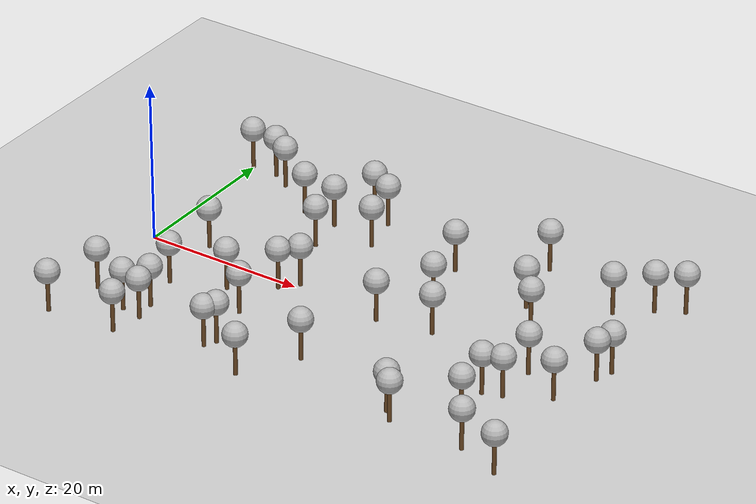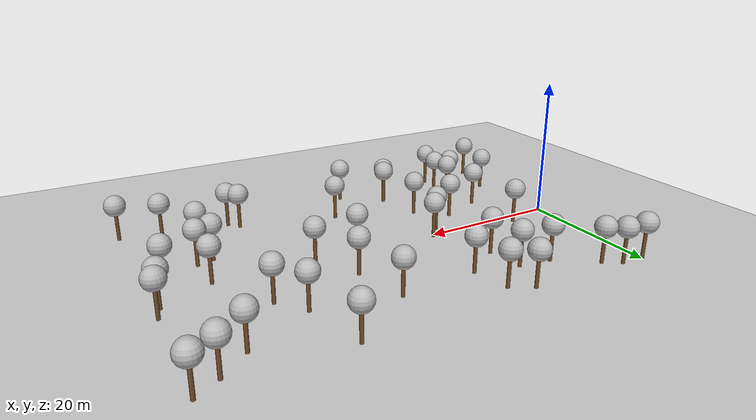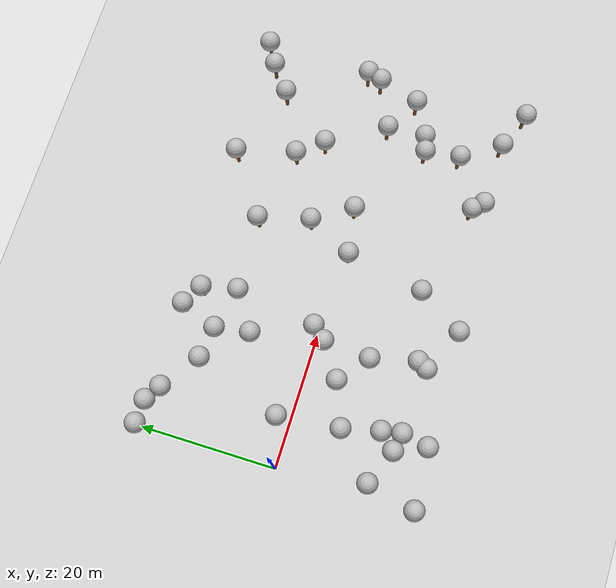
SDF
<sdf version='1.7'>
            <world name='default'>
                <light name='sun' type='directional'>
                <cast_shadows>1</cast_shadows>
                <pose>0 0 10 0 -0 0</pose>
                <diffuse>0.8 0.8 0.8 1</diffuse>
                <specular>0.2 0.2 0.2 1</specular>
                <attenuation>
                    <range>1000</range>
                    <constant>0.9</constant>
                    <linear>0.01</linear>
                    <quadratic>0.001</quadratic>
                </attenuation>
                <direction>-0.5 0.1 -0.9</direction>
                <spot>
                    <inner_angle>0</inner_angle>
                    <outer_angle>0</outer_angle>
                    <falloff>0</falloff>
                </spot>
                </light>
                <model name='ground_plane'>
                <static>1</static>
                <link name='link'>
                    <collision name='collision'>
                    <geometry>
                        <plane>
                        <normal>0 0 1</normal>
                        <size>100 100</size>
                        </plane>
                    </geometry>
                    <surface>
                        <contact>
                        <collide_bitmask>65535</collide_bitmask>
                        <ode/>
                        </contact>
                        <friction>
                        <ode>
                            <mu>100</mu>
                            <mu2>50</mu2>
                        </ode>
                        <torsional>
                            <ode/>
                        </torsional>
                        </friction>
                        <bounce/>
                    </surface>
                    <max_contacts>10</max_contacts>
                    </collision>
                    <visual name='visual'>
                    <cast_shadows>0</cast_shadows>
                    <geometry>
                        <plane>
                        <normal>0 0 1</normal>
                        <size>100 100</size>
                        </plane>
                    </geometry>
                    <material>
                        <script>
                        <uri>file://media/materials/scripts/gazebo.material</uri>
                        <name>Gazebo/Grey</name>
                        </script>
                    </material>
                    </visual>
                    <self_collide>0</self_collide>
                    <enable_wind>0</enable_wind>
                    <kinematic>0</kinematic>
                </link>
                </model>
                <gravity>0 0 -9.8</gravity>
                <magnetic_field>6e-06 2.3e-05 -4.2e-05</magnetic_field>
                <atmosphere type='adiabatic'/>
                <physics type='ode'>
                <max_step_size>0.001</max_step_size>
                <real_time_factor>1</real_time_factor>
                <real_time_update_rate>1000</real_time_update_rate>
                </physics>
                <scene>
                <ambient>0.4 0.4 0.4 1</ambient>
                <background>0.7 0.7 0.7 1</background>
                <shadows>1</shadows>
                </scene>
                <wind/>
                <spherical_coordinates>
                <surface_model>EARTH_WGS84</surface_model>
                <latitude_deg>0</latitude_deg>
                <longitude_deg>0</longitude_deg>
                <elevation>0</elevation>
                <heading_deg>0</heading_deg>
                </spherical_coordinates>

    <model name='tree_simple498'>
      <static>1</static>
      <link name='link'>
        <pose frame=''>0 0 0.1 0 -0 0</pose>
        <collision name='collision_trunk'>
          <pose frame=''>0 0 2 0 -0 0</pose>
          <geometry>
            <cylinder>
              <radius>0.25</radius>
              <length>4</length>
            </cylinder>
          </geometry>
        </collision>
        <collision name='collision_treetop'>
          <pose frame=''>0 0 5.2 0 -0 0</pose>
          <geometry>
            <sphere>
              <radius>1.5</radius>
            </sphere>
          </geometry>
        </collision>
        <visual name='trunk'>
          <pose frame=''>0 0 2 0 -0 0</pose>
          <geometry>
            <cylinder>
              <radius>0.25</radius>
              <length>4</length>
            </cylinder>
          </geometry>
          <material>
            <script>
              <uri>model://tree_simple/scripts</uri>
              <uri>model://tree_simple/materials/textures</uri>
              <name>TreeSimple/Trunk</name>
            </script>
          </material>
        </visual>
        <visual name='treetop'>
          <pose frame=''>0 0 5.2 0 -0 0</pose>
          <geometry>
            <sphere>
              <radius>1.5</radius>
            </sphere>
          </geometry>
          <material>
            <script>
              <uri>model://tree_simple/scripts</uri>
              <uri>model://tree_simple/materials/textures</uri>
              <name>TreeSimple/Treetop</name>
            </script>
          </material>
        </visual>
        <self_collide>0</self_collide>
        <kinematic>0</kinematic>
      </link>
      <pose frame=''>0.0 20.0 0 0 -0 0</pose>
    </model>
        <model name='tree_simple497'>
      <static>1</static>
      <link name='link'>
        <pose frame=''>0 0 0.1 0 -0 0</pose>
        <collision name='collision_trunk'>
          <pose frame=''>0 0 2 0 -0 0</pose>
          <geometry>
            <cylinder>
              <radius>0.25</radius>
              <length>4</length>
            </cylinder>
          </geometry>
        </collision>
        <collision name='collision_treetop'>
          <pose frame=''>0 0 5.2 0 -0 0</pose>
          <geometry>
            <sphere>
              <radius>1.5</radius>
            </sphere>
          </geometry>
        </collision>
        <visual name='trunk'>
          <pose frame=''>0 0 2 0 -0 0</pose>
          <geometry>
            <cylinder>
              <radius>0.25</radius>
              <length>4</length>
            </cylinder>
          </geometry>
          <material>
            <script>
              <uri>model://tree_simple/scripts</uri>
              <uri>model://tree_simple/materials/textures</uri>
              <name>TreeSimple/Trunk</name>
            </script>
          </material>
        </visual>
        <visual name='treetop'>
          <pose frame=''>0 0 5.2 0 -0 0</pose>
          <geometry>
            <sphere>
              <radius>1.5</radius>
            </sphere>
          </geometry>
          <material>
            <script>
              <uri>model://tree_simple/scripts</uri>
              <uri>model://tree_simple/materials/textures</uri>
              <name>TreeSimple/Treetop</name>
            </script>
          </material>
        </visual>
        <self_collide>0</self_collide>
        <kinematic>0</kinematic>
      </link>
      <pose frame=''>0.0 -20.0 0 0 -0 0</pose>
    </model>
        <model name='tree_simple496'>
      <static>1</static>
      <link name='link'>
        <pose frame=''>0 0 0.1 0 -0 0</pose>
        <collision name='collision_trunk'>
          <pose frame=''>0 0 2 0 -0 0</pose>
          <geometry>
            <cylinder>
              <radius>0.25</radius>
              <length>4</length>
            </cylinder>
          </geometry>
        </collision>
        <collision name='collision_treetop'>
          <pose frame=''>0 0 5.2 0 -0 0</pose>
          <geometry>
            <sphere>
              <radius>1.5</radius>
            </sphere>
          </geometry>
        </collision>
        <visual name='trunk'>
          <pose frame=''>0 0 2 0 -0 0</pose>
          <geometry>
            <cylinder>
              <radius>0.25</radius>
              <length>4</length>
            </cylinder>
          </geometry>
          <material>
            <script>
              <uri>model://tree_simple/scripts</uri>
              <uri>model://tree_simple/materials/textures</uri>
              <name>TreeSimple/Trunk</name>
            </script>
          </material>
        </visual>
        <visual name='treetop'>
          <pose frame=''>0 0 5.2 0 -0 0</pose>
          <geometry>
            <sphere>
              <radius>1.5</radius>
            </sphere>
          </geometry>
          <material>
            <script>
              <uri>model://tree_simple/scripts</uri>
              <uri>model://tree_simple/materials/textures</uri>
              <name>TreeSimple/Treetop</name>
            </script>
          </material>
        </visual>
        <self_collide>0</self_collide>
        <kinematic>0</kinematic>
      </link>
      <pose frame=''>60.0 20.0 0 0 -0 0</pose>
    </model>
        <model name='tree_simple495'>
      <static>1</static>
      <link name='link'>
        <pose frame=''>0 0 0.1 0 -0 0</pose>
        <collision name='collision_trunk'>
          <pose frame=''>0 0 2 0 -0 0</pose>
          <geometry>
            <cylinder>
              <radius>0.25</radius>
              <length>4</length>
            </cylinder>
          </geometry>
        </collision>
        <collision name='collision_treetop'>
          <pose frame=''>0 0 5.2 0 -0 0</pose>
          <geometry>
            <sphere>
              <radius>1.5</radius>
            </sphere>
          </geometry>
        </collision>
        <visual name='trunk'>
          <pose frame=''>0 0 2 0 -0 0</pose>
          <geometry>
            <cylinder>
              <radius>0.25</radius>
              <length>4</length>
            </cylinder>
          </geometry>
          <material>
            <script>
              <uri>model://tree_simple/scripts</uri>
              <uri>model://tree_simple/materials/textures</uri>
              <name>TreeSimple/Trunk</name>
            </script>
          </material>
        </visual>
        <visual name='treetop'>
          <pose frame=''>0 0 5.2 0 -0 0</pose>
          <geometry>
            <sphere>
              <radius>1.5</radius>
            </sphere>
          </geometry>
          <material>
            <script>
              <uri>model://tree_simple/scripts</uri>
              <uri>model://tree_simple/materials/textures</uri>
              <name>TreeSimple/Treetop</name>
            </script>
          </material>
        </visual>
        <self_collide>0</self_collide>
        <kinematic>0</kinematic>
      </link>
      <pose frame=''>60.0 -20.0 0 0 -0 0</pose>
    </model>
    <model name="tree_1_0"><pose frame="">44.92 -17.61 0 0 -0 0</pose><static>1</static><link name="link"><pose frame="">0 0 0.1 0 -0 0</pose><collision name="collision_trunk"><pose frame="">0 0 2 0 -0 0</pose><geometry><cylinder><radius>0.25</radius><length>4</length></cylinder></geometry></collision><collision name="collision_treetop"><pose frame="">0 0 5.2 0 -0 0</pose><geometry><sphere><radius>1.5</radius></sphere></geometry></collision><visual name="trunk"><pose frame="">0 0 2 0 -0 0</pose><geometry><cylinder><radius>0.25</radius><length>4</length></cylinder></geometry><material><script><uri>model://tree_simple/scripts</uri><uri>model://tree_simple/materials/textures</uri><name>TreeSimple/Trunk</name></script></material></visual><visual name="treetop"><pose frame="">0 0 5.2 0 -0 0</pose><geometry><sphere><radius>1.5</radius></sphere></geometry><material><script><uri>model://tree_simple/scripts</uri><uri>model://tree_simple/materials/textures</uri><name>TreeSimple/Treetop</name></script></material></visual><self_collide>0</self_collide><kinematic>0</kinematic></link></model><model name="tree_1_1"><pose frame="">59.77 4.36 0 0 -0 0</pose><static>1</static><link name="link"><pose frame="">0 0 0.1 0 -0 0</pose><collision name="collision_trunk"><pose frame="">0 0 2 0 -0 0</pose><geometry><cylinder><radius>0.25</radius><length>4</length></cylinder></geometry></collision><collision name="collision_treetop"><pose frame="">0 0 5.2 0 -0 0</pose><geometry><sphere><radius>1.5</radius></sphere></geometry></collision><visual name="trunk"><pose frame="">0 0 2 0 -0 0</pose><geometry><cylinder><radius>0.25</radius><length>4</length></cylinder></geometry><material><script><uri>model://tree_simple/scripts</uri><uri>model://tree_simple/materials/textures</uri><name>TreeSimple/Trunk</name></script></material></visual><visual name="treetop"><pose frame="">0 0 5.2 0 -0 0</pose><geometry><sphere><radius>1.5</radius></sphere></geometry><material><script><uri>model://tree_simple/scripts</uri><uri>model://tree_simple/materials/textures</uri><name>TreeSimple/Treetop</name></script></material></visual><self_collide>0</self_collide><kinematic>0</kinematic></link></model><model name="tree_1_2"><pose frame="">19.02 -16.3 0 0 -0 0</pose><static>1</static><link name="link"><pose frame="">0 0 0.1 0 -0 0</pose><collision name="collision_trunk"><pose frame="">0 0 2 0 -0 0</pose><geometry><cylinder><radius>0.25</radius><length>4</length></cylinder></geometry></collision><collision name="collision_treetop"><pose frame="">0 0 5.2 0 -0 0</pose><geometry><sphere><radius>1.5</radius></sphere></geometry></collision><visual name="trunk"><pose frame="">0 0 2 0 -0 0</pose><geometry><cylinder><radius>0.25</radius><length>4</length></cylinder></geometry><material><script><uri>model://tree_simple/scripts</uri><uri>model://tree_simple/materials/textures</uri><name>TreeSimple/Trunk</name></script></material></visual><visual name="treetop"><pose frame="">0 0 5.2 0 -0 0</pose><geometry><sphere><radius>1.5</radius></sphere></geometry><material><script><uri>model://tree_simple/scripts</uri><uri>model://tree_simple/materials/textures</uri><name>TreeSimple/Treetop</name></script></material></visual><self_collide>0</self_collide><kinematic>0</kinematic></link></model><model name="tree_1_3"><pose frame="">6.72 1.77 0 0 -0 0</pose><static>1</static><link name="link"><pose frame="">0 0 0.1 0 -0 0</pose><collision name="collision_trunk"><pose frame="">0 0 2 0 -0 0</pose><geometry><cylinder><radius>0.25</radius><length>4</length></cylinder></geometry></collision><collision name="collision_treetop"><pose frame="">0 0 5.2 0 -0 0</pose><geometry><sphere><radius>1.5</radius></sphere></geometry></collision><visual name="trunk"><pose frame="">0 0 2 0 -0 0</pose><geometry><cylinder><radius>0.25</radius><length>4</length></cylinder></geometry><material><script><uri>model://tree_simple/scripts</uri><uri>model://tree_simple/materials/textures</uri><name>TreeSimple/Trunk</name></script></material></visual><visual name="treetop"><pose frame="">0 0 5.2 0 -0 0</pose><geometry><sphere><radius>1.5</radius></sphere></geometry><material><script><uri>model://tree_simple/scripts</uri><uri>model://tree_simple/materials/textures</uri><name>TreeSimple/Treetop</name></script></material></visual><self_collide>0</self_collide><kinematic>0</kinematic></link></model><model name="tree_1_4"><pose frame="">50.16 -7.24 0 0 -0 0</pose><static>1</static><link name="link"><pose frame="">0 0 0.1 0 -0 0</pose><collision name="collision_trunk"><pose frame="">0 0 2 0 -0 0</pose><geometry><cylinder><radius>0.25</radius><length>4</length></cylinder></geometry></collision><collision name="collision_treetop"><pose frame="">0 0 5.2 0 -0 0</pose><geometry><sphere><radius>1.5</radius></sphere></geometry></collision><visual name="trunk"><pose frame="">0 0 2 0 -0 0</pose><geometry><cylinder><radius>0.25</radius><length>4</length></cylinder></geometry><material><script><uri>model://tree_simple/scripts</uri><uri>model://tree_simple/materials/textures</uri><name>TreeSimple/Trunk</name></script></material></visual><visual name="treetop"><pose frame="">0 0 5.2 0 -0 0</pose><geometry><sphere><radius>1.5</radius></sphere></geometry><material><script><uri>model://tree_simple/scripts</uri><uri>model://tree_simple/materials/textures</uri><name>TreeSimple/Treetop</name></script></material></visual><self_collide>0</self_collide><kinematic>0</kinematic></link></model><model name="tree_1_5"><pose frame="">18.67 -1.35 0 0 -0 0</pose><static>1</static><link name="link"><pose frame="">0 0 0.1 0 -0 0</pose><collision name="collision_trunk"><pose frame="">0 0 2 0 -0 0</pose><geometry><cylinder><radius>0.25</radius><length>4</length></cylinder></geometry></collision><collision name="collision_treetop"><pose frame="">0 0 5.2 0 -0 0</pose><geometry><sphere><radius>1.5</radius></sphere></geometry></collision><visual name="trunk"><pose frame="">0 0 2 0 -0 0</pose><geometry><cylinder><radius>0.25</radius><length>4</length></cylinder></geometry><material><script><uri>model://tree_simple/scripts</uri><uri>model://tree_simple/materials/textures</uri><name>TreeSimple/Trunk</name></script></material></visual><visual name="treetop"><pose frame="">0 0 5.2 0 -0 0</pose><geometry><sphere><radius>1.5</radius></sphere></geometry><material><script><uri>model://tree_simple/scripts</uri><uri>model://tree_simple/materials/textures</uri><name>TreeSimple/Treetop</name></script></material></visual><self_collide>0</self_collide><kinematic>0</kinematic></link></model><model name="tree_1_6"><pose frame="">9.47 -15.53 0 0 -0 0</pose><static>1</static><link name="link"><pose frame="">0 0 0.1 0 -0 0</pose><collision name="collision_trunk"><pose frame="">0 0 2 0 -0 0</pose><geometry><cylinder><radius>0.25</radius><length>4</length></cylinder></geometry></collision><collision name="collision_treetop"><pose frame="">0 0 5.2 0 -0 0</pose><geometry><sphere><radius>1.5</radius></sphere></geometry></collision><visual name="trunk"><pose frame="">0 0 2 0 -0 0</pose><geometry><cylinder><radius>0.25</radius><length>4</length></cylinder></geometry><material><script><uri>model://tree_simple/scripts</uri><uri>model://tree_simple/materials/textures</uri><name>TreeSimple/Trunk</name></script></material></visual><visual name="treetop"><pose frame="">0 0 5.2 0 -0 0</pose><geometry><sphere><radius>1.5</radius></sphere></geometry><material><script><uri>model://tree_simple/scripts</uri><uri>model://tree_simple/materials/textures</uri><name>TreeSimple/Treetop</name></script></material></visual><self_collide>0</self_collide><kinematic>0</kinematic></link></model><model name="tree_1_7"><pose frame="">33.26 13.22 0 0 -0 0</pose><static>1</static><link name="link"><pose frame="">0 0 0.1 0 -0 0</pose><collision name="collision_trunk"><pose frame="">0 0 2 0 -0 0</pose><geometry><cylinder><radius>0.25</radius><length>4</length></cylinder></geometry></collision><collision name="collision_treetop"><pose frame="">0 0 5.2 0 -0 0</pose><geometry><sphere><radius>1.5</radius></sphere></geometry></collision><visual name="trunk"><pose frame="">0 0 2 0 -0 0</pose><geometry><cylinder><radius>0.25</radius><length>4</length></cylinder></geometry><material><script><uri>model://tree_simple/scripts</uri><uri>model://tree_simple/materials/textures</uri><name>TreeSimple/Trunk</name></script></material></visual><visual name="treetop"><pose frame="">0 0 5.2 0 -0 0</pose><geometry><sphere><radius>1.5</radius></sphere></geometry><material><script><uri>model://tree_simple/scripts</uri><uri>model://tree_simple/materials/textures</uri><name>TreeSimple/Treetop</name></script></material></visual><self_collide>0</self_collide><kinematic>0</kinematic></link></model><model name="tree_1_8"><pose frame="">8.69 -19.43 0 0 -0 0</pose><static>1</static><link name="link"><pose frame="">0 0 0.1 0 -0 0</pose><collision name="collision_trunk"><pose frame="">0 0 2 0 -0 0</pose><geometry><cylinder><radius>0.25</radius><length>4</length></cylinder></geometry></collision><collision name="collision_treetop"><pose frame="">0 0 5.2 0 -0 0</pose><geometry><sphere><radius>1.5</radius></sphere></geometry></collision><visual name="trunk"><pose frame="">0 0 2 0 -0 0</pose><geometry><cylinder><radius>0.25</radius><length>4</length></cylinder></geometry><material><script><uri>model://tree_simple/scripts</uri><uri>model://tree_simple/materials/textures</uri><name>TreeSimple/Trunk</name></script></material></visual><visual name="treetop"><pose frame="">0 0 5.2 0 -0 0</pose><geometry><sphere><radius>1.5</radius></sphere></geometry><material><script><uri>model://tree_simple/scripts</uri><uri>model://tree_simple/materials/textures</uri><name>TreeSimple/Treetop</name></script></material></visual><self_collide>0</self_collide><kinematic>0</kinematic></link></model><model name="tree_1_9"><pose frame="">20.39 0.6 0 0 -0 0</pose><static>1</static><link name="link"><pose frame="">0 0 0.1 0 -0 0</pose><collision name="collision_trunk"><pose frame="">0 0 2 0 -0 0</pose><geometry><cylinder><radius>0.25</radius><length>4</length></cylinder></geometry></collision><collision name="collision_treetop"><pose frame="">0 0 5.2 0 -0 0</pose><geometry><sphere><radius>1.5</radius></sphere></geometry></collision><visual name="trunk"><pose frame="">0 0 2 0 -0 0</pose><geometry><cylinder><radius>0.25</radius><length>4</length></cylinder></geometry><material><script><uri>model://tree_simple/scripts</uri><uri>model://tree_simple/materials/textures</uri><name>TreeSimple/Trunk</name></script></material></visual><visual name="treetop"><pose frame="">0 0 5.2 0 -0 0</pose><geometry><sphere><radius>1.5</radius></sphere></geometry><material><script><uri>model://tree_simple/scripts</uri><uri>model://tree_simple/materials/textures</uri><name>TreeSimple/Treetop</name></script></material></visual><self_collide>0</self_collide><kinematic>0</kinematic></link></model><model name="tree_1_10"><pose frame="">6.8 -15.01 0 0 -0 0</pose><static>1</static><link name="link"><pose frame="">0 0 0.1 0 -0 0</pose><collision name="collision_trunk"><pose frame="">0 0 2 0 -0 0</pose><geometry><cylinder><radius>0.25</radius><length>4</length></cylinder></geometry></collision><collision name="collision_treetop"><pose frame="">0 0 5.2 0 -0 0</pose><geometry><sphere><radius>1.5</radius></sphere></geometry></collision><visual name="trunk"><pose frame="">0 0 2 0 -0 0</pose><geometry><cylinder><radius>0.25</radius><length>4</length></cylinder></geometry><material><script><uri>model://tree_simple/scripts</uri><uri>model://tree_simple/materials/textures</uri><name>TreeSimple/Trunk</name></script></material></visual><visual name="treetop"><pose frame="">0 0 5.2 0 -0 0</pose><geometry><sphere><radius>1.5</radius></sphere></geometry><material><script><uri>model://tree_simple/scripts</uri><uri>model://tree_simple/materials/textures</uri><name>TreeSimple/Treetop</name></script></material></visual><self_collide>0</self_collide><kinematic>0</kinematic></link></model><model name="tree_1_11"><pose frame="">43.56 -16.16 0 0 -0 0</pose><static>1</static><link name="link"><pose frame="">0 0 0.1 0 -0 0</pose><collision name="collision_trunk"><pose frame="">0 0 2 0 -0 0</pose><geometry><cylinder><radius>0.25</radius><length>4</length></cylinder></geometry></collision><collision name="collision_treetop"><pose frame="">0 0 5.2 0 -0 0</pose><geometry><sphere><radius>1.5</radius></sphere></geometry></collision><visual name="trunk"><pose frame="">0 0 2 0 -0 0</pose><geometry><cylinder><radius>0.25</radius><length>4</length></cylinder></geometry><material><script><uri>model://tree_simple/scripts</uri><uri>model://tree_simple/materials/textures</uri><name>TreeSimple/Trunk</name></script></material></visual><visual name="treetop"><pose frame="">0 0 5.2 0 -0 0</pose><geometry><sphere><radius>1.5</radius></sphere></geometry><material><script><uri>model://tree_simple/scripts</uri><uri>model://tree_simple/materials/textures</uri><name>TreeSimple/Treetop</name></script></material></visual><self_collide>0</self_collide><kinematic>0</kinematic></link></model><model name="tree_1_12"><pose frame="">20.99 17.61 0 0 -0 0</pose><static>1</static><link name="link"><pose frame="">0 0 0.1 0 -0 0</pose><collision name="collision_trunk"><pose frame="">0 0 2 0 -0 0</pose><geometry><cylinder><radius>0.25</radius><length>4</length></cylinder></geometry></collision><collision name="collision_treetop"><pose frame="">0 0 5.2 0 -0 0</pose><geometry><sphere><radius>1.5</radius></sphere></geometry></collision><visual name="trunk"><pose frame="">0 0 2 0 -0 0</pose><geometry><cylinder><radius>0.25</radius><length>4</length></cylinder></geometry><material><script><uri>model://tree_simple/scripts</uri><uri>model://tree_simple/materials/textures</uri><name>TreeSimple/Trunk</name></script></material></visual><visual name="treetop"><pose frame="">0 0 5.2 0 -0 0</pose><geometry><sphere><radius>1.5</radius></sphere></geometry><material><script><uri>model://tree_simple/scripts</uri><uri>model://tree_simple/materials/textures</uri><name>TreeSimple/Treetop</name></script></material></visual><self_collide>0</self_collide><kinematic>0</kinematic></link></model><model name="tree_1_13"><pose frame="">17.96 19.31 0 0 -0 0</pose><static>1</static><link name="link"><pose frame="">0 0 0.1 0 -0 0</pose><collision name="collision_trunk"><pose frame="">0 0 2 0 -0 0</pose><geometry><cylinder><radius>0.25</radius><length>4</length></cylinder></geometry></collision><collision name="collision_treetop"><pose frame="">0 0 5.2 0 -0 0</pose><geometry><sphere><radius>1.5</radius></sphere></geometry></collision><visual name="trunk"><pose frame="">0 0 2 0 -0 0</pose><geometry><cylinder><radius>0.25</radius><length>4</length></cylinder></geometry><material><script><uri>model://tree_simple/scripts</uri><uri>model://tree_simple/materials/textures</uri><name>TreeSimple/Trunk</name></script></material></visual><visual name="treetop"><pose frame="">0 0 5.2 0 -0 0</pose><geometry><sphere><radius>1.5</radius></sphere></geometry><material><script><uri>model://tree_simple/scripts</uri><uri>model://tree_simple/materials/textures</uri><name>TreeSimple/Treetop</name></script></material></visual><self_collide>0</self_collide><kinematic>0</kinematic></link></model><model name="tree_1_14"><pose frame="">54.47 -17.88 0 0 -0 0</pose><static>1</static><link name="link"><pose frame="">0 0 0.1 0 -0 0</pose><collision name="collision_trunk"><pose frame="">0 0 2 0 -0 0</pose><geometry><cylinder><radius>0.25</radius><length>4</length></cylinder></geometry></collision><collision name="collision_treetop"><pose frame="">0 0 5.2 0 -0 0</pose><geometry><sphere><radius>1.5</radius></sphere></geometry></collision><visual name="trunk"><pose frame="">0 0 2 0 -0 0</pose><geometry><cylinder><radius>0.25</radius><length>4</length></cylinder></geometry><material><script><uri>model://tree_simple/scripts</uri><uri>model://tree_simple/materials/textures</uri><name>TreeSimple/Trunk</name></script></material></visual><visual name="treetop"><pose frame="">0 0 5.2 0 -0 0</pose><geometry><sphere><radius>1.5</radius></sphere></geometry><material><script><uri>model://tree_simple/scripts</uri><uri>model://tree_simple/materials/textures</uri><name>TreeSimple/Treetop</name></script></material></visual><self_collide>0</self_collide><kinematic>0</kinematic></link></model><model name="tree_1_15"><pose frame="">18.14 -8.26 0 0 -0 0</pose><static>1</static><link name="link"><pose frame="">0 0 0.1 0 -0 0</pose><collision name="collision_trunk"><pose frame="">0 0 2 0 -0 0</pose><geometry><cylinder><radius>0.25</radius><length>4</length></cylinder></geometry></collision><collision name="collision_treetop"><pose frame="">0 0 5.2 0 -0 0</pose><geometry><sphere><radius>1.5</radius></sphere></geometry></collision><visual name="trunk"><pose frame="">0 0 2 0 -0 0</pose><geometry><cylinder><radius>0.25</radius><length>4</length></cylinder></geometry><material><script><uri>model://tree_simple/scripts</uri><uri>model://tree_simple/materials/textures</uri><name>TreeSimple/Trunk</name></script></material></visual><visual name="treetop"><pose frame="">0 0 5.2 0 -0 0</pose><geometry><sphere><radius>1.5</radius></sphere></geometry><material><script><uri>model://tree_simple/scripts</uri><uri>model://tree_simple/materials/textures</uri><name>TreeSimple/Treetop</name></script></material></visual><self_collide>0</self_collide><kinematic>0</kinematic></link></model><model name="tree_1_16"><pose frame="">52.19 -0.91 0 0 -0 0</pose><static>1</static><link name="link"><pose frame="">0 0 0.1 0 -0 0</pose><collision name="collision_trunk"><pose frame="">0 0 2 0 -0 0</pose><geometry><cylinder><radius>0.25</radius><length>4</length></cylinder></geometry></collision><collision name="collision_treetop"><pose frame="">0 0 5.2 0 -0 0</pose><geometry><sphere><radius>1.5</radius></sphere></geometry></collision><visual name="trunk"><pose frame="">0 0 2 0 -0 0</pose><geometry><cylinder><radius>0.25</radius><length>4</length></cylinder></geometry><material><script><uri>model://tree_simple/scripts</uri><uri>model://tree_simple/materials/textures</uri><name>TreeSimple/Trunk</name></script></material></visual><visual name="treetop"><pose frame="">0 0 5.2 0 -0 0</pose><geometry><sphere><radius>1.5</radius></sphere></geometry><material><script><uri>model://tree_simple/scripts</uri><uri>model://tree_simple/materials/textures</uri><name>TreeSimple/Treetop</name></script></material></visual><self_collide>0</self_collide><kinematic>0</kinematic></link></model><model name="tree_1_17"><pose frame="">15.92 13.92 0 0 -0 0</pose><static>1</static><link name="link"><pose frame="">0 0 0.1 0 -0 0</pose><collision name="collision_trunk"><pose frame="">0 0 2 0 -0 0</pose><geometry><cylinder><radius>0.25</radius><length>4</length></cylinder></geometry></collision><collision name="collision_treetop"><pose frame="">0 0 5.2 0 -0 0</pose><geometry><sphere><radius>1.5</radius></sphere></geometry></collision><visual name="trunk"><pose frame="">0 0 2 0 -0 0</pose><geometry><cylinder><radius>0.25</radius><length>4</length></cylinder></geometry><material><script><uri>model://tree_simple/scripts</uri><uri>model://tree_simple/materials/textures</uri><name>TreeSimple/Trunk</name></script></material></visual><visual name="treetop"><pose frame="">0 0 5.2 0 -0 0</pose><geometry><sphere><radius>1.5</radius></sphere></geometry><material><script><uri>model://tree_simple/scripts</uri><uri>model://tree_simple/materials/textures</uri><name>TreeSimple/Treetop</name></script></material></visual><self_collide>0</self_collide><kinematic>0</kinematic></link></model><model name="tree_1_18"><pose frame="">52.43 -6.56 0 0 -0 0</pose><static>1</static><link name="link"><pose frame="">0 0 0.1 0 -0 0</pose><collision name="collision_trunk"><pose frame="">0 0 2 0 -0 0</pose><geometry><cylinder><radius>0.25</radius><length>4</length></cylinder></geometry></collision><collision name="collision_treetop"><pose frame="">0 0 5.2 0 -0 0</pose><geometry><sphere><radius>1.5</radius></sphere></geometry></collision><visual name="trunk"><pose frame="">0 0 2 0 -0 0</pose><geometry><cylinder><radius>0.25</radius><length>4</length></cylinder></geometry><material><script><uri>model://tree_simple/scripts</uri><uri>model://tree_simple/materials/textures</uri><name>TreeSimple/Trunk</name></script></material></visual><visual name="treetop"><pose frame="">0 0 5.2 0 -0 0</pose><geometry><sphere><radius>1.5</radius></sphere></geometry><material><script><uri>model://tree_simple/scripts</uri><uri>model://tree_simple/materials/textures</uri><name>TreeSimple/Treetop</name></script></material></visual><self_collide>0</self_collide><kinematic>0</kinematic></link></model><model name="tree_1_19"><pose frame="">31.9 -0.966 0 0 -0 0</pose><static>1</static><link name="link"><pose frame="">0 0 0.1 0 -0 0</pose><collision name="collision_trunk"><pose frame="">0 0 2 0 -0 0</pose><geometry><cylinder><radius>0.25</radius><length>4</length></cylinder></geometry></collision><collision name="collision_treetop"><pose frame="">0 0 5.2 0 -0 0</pose><geometry><sphere><radius>1.5</radius></sphere></geometry></collision><visual name="trunk"><pose frame="">0 0 2 0 -0 0</pose><geometry><cylinder><radius>0.25</radius><length>4</length></cylinder></geometry><material><script><uri>model://tree_simple/scripts</uri><uri>model://tree_simple/materials/textures</uri><name>TreeSimple/Trunk</name></script></material></visual><visual name="treetop"><pose frame="">0 0 5.2 0 -0 0</pose><geometry><sphere><radius>1.5</radius></sphere></geometry><material><script><uri>model://tree_simple/scripts</uri><uri>model://tree_simple/materials/textures</uri><name>TreeSimple/Treetop</name></script></material></visual><self_collide>0</self_collide><kinematic>0</kinematic></link></model><model name="tree_1_20"><pose frame="">1.61 -12.91 0 0 -0 0</pose><static>1</static><link name="link"><pose frame="">0 0 0.1 0 -0 0</pose><collision name="collision_trunk"><pose frame="">0 0 2 0 -0 0</pose><geometry><cylinder><radius>0.25</radius><length>4</length></cylinder></geometry></collision><collision name="collision_treetop"><pose frame="">0 0 5.2 0 -0 0</pose><geometry><sphere><radius>1.5</radius></sphere></geometry></collision><visual name="trunk"><pose frame="">0 0 2 0 -0 0</pose><geometry><cylinder><radius>0.25</radius><length>4</length></cylinder></geometry><material><script><uri>model://tree_simple/scripts</uri><uri>model://tree_simple/materials/textures</uri><name>TreeSimple/Trunk</name></script></material></visual><visual name="treetop"><pose frame="">0 0 5.2 0 -0 0</pose><geometry><sphere><radius>1.5</radius></sphere></geometry><material><script><uri>model://tree_simple/scripts</uri><uri>model://tree_simple/materials/textures</uri><name>TreeSimple/Treetop</name></script></material></visual><self_collide>0</self_collide><kinematic>0</kinematic></link></model>
    <model name="tree_1_21">
  <pose frame="">5.82 18.37 0 0 -0 0</pose>
  <static>1</static>
  <link name="link">
    <pose frame="">0 0 0.1 0 -0 0</pose>
    <collision name="collision_trunk"><pose frame="">0 0 2 0 -0 0</pose><geometry><cylinder><radius>0.25</radius><length>4</length></cylinder></geometry></collision>
    <collision name="collision_treetop"><pose frame="">0 0 5.2 0 -0 0</pose><geometry><sphere><radius>1.5</radius></sphere></geometry></collision>
    <visual name="trunk"><pose frame="">0 0 2 0 -0 0</pose><geometry><cylinder><radius>0.25</radius><length>4</length></cylinder></geometry><material><script><uri>model://tree_simple/scripts</uri><uri>model://tree_simple/materials/textures</uri><name>TreeSimple/Trunk</name></script></material></visual>
    <visual name="treetop"><pose frame="">0 0 5.2 0 -0 0</pose><geometry><sphere><radius>1.5</radius></sphere></geometry><material><script><uri>model://tree_simple/scripts</uri><uri>model://tree_simple/materials/textures</uri><name>TreeSimple/Treetop</name></script></material></visual>
    <self_collide>0</self_collide><kinematic>0</kinematic>
  </link>
</model>
<model name="tree_1_22">
  <pose frame="">57.34 -3.89 0 0 -0 0</pose>
  <static>1</static>
  <link name="link">
    <pose frame="">0 0 0.1 0 -0 0</pose>
    <collision name="collision_trunk"><pose frame="">0 0 2 0 -0 0</pose><geometry><cylinder><radius>0.25</radius><length>4</length></cylinder></geometry></collision>
    <collision name="collision_treetop"><pose frame="">0 0 5.2 0 -0 0</pose><geometry><sphere><radius>1.5</radius></sphere></geometry></collision>
    <visual name="trunk"><pose frame="">0 0 2 0 -0 0</pose><geometry><cylinder><radius>0.25</radius><length>4</length></cylinder></geometry><material><script><uri>model://tree_simple/scripts</uri><uri>model://tree_simple/materials/textures</uri><name>TreeSimple/Trunk</name></script></material></visual>
    <visual name="treetop"><pose frame="">0 0 5.2 0 -0 0</pose><geometry><sphere><radius>1.5</radius></sphere></geometry><material><script><uri>model://tree_simple/scripts</uri><uri>model://tree_simple/materials/textures</uri><name>TreeSimple/Treetop</name></script></material></visual>
    <self_collide>0</self_collide><kinematic>0</kinematic>
  </link>
</model>
<model name="tree_1_23">
  <pose frame="">22.15 12.48 0 0 -0 0</pose>
  <static>1</static>
  <link name="link">
    <pose frame="">0 0 0.1 0 -0 0</pose>
    <collision name="collision_trunk"><pose frame="">0 0 2 0 -0 0</pose><geometry><cylinder><radius>0.25</radius><length>4</length></cylinder></geometry></collision>
    <collision name="collision_treetop"><pose frame="">0 0 5.2 0 -0 0</pose><geometry><sphere><radius>1.5</radius></sphere></geometry></collision>
    <visual name="trunk"><pose frame="">0 0 2 0 -0 0</pose><geometry><cylinder><radius>0.25</radius><length>4</length></cylinder></geometry><material><script><uri>model://tree_simple/scripts</uri><uri>model://tree_simple/materials/textures</uri><name>TreeSimple/Trunk</name></script></material></visual>
    <visual name="treetop"><pose frame="">0 0 5.2 0 -0 0</pose><geometry><sphere><radius>1.5</radius></sphere></geometry><material><script><uri>model://tree_simple/scripts</uri><uri>model://tree_simple/materials/textures</uri><name>TreeSimple/Treetop</name></script></material></visual>
    <self_collide>0</self_collide><kinematic>0</kinematic>
  </link>
</model>
<model name="tree_1_24">
  <pose frame="">38.71 0.1842 0 0 -0 0</pose>
  <static>1</static>
  <link name="link">
    <pose frame="">0 0 0.1 0 -0 0</pose>
    <collision name="collision_trunk"><pose frame="">0 0 2 0 -0 0</pose><geometry><cylinder><radius>0.25</radius><length>4</length></cylinder></geometry></collision>
    <collision name="collision_treetop"><pose frame="">0 0 5.2 0 -0 0</pose><geometry><sphere><radius>1.5</radius></sphere></geometry></collision>
    <visual name="trunk"><pose frame="">0 0 2 0 -0 0</pose><geometry><cylinder><radius>0.25</radius><length>4</length></cylinder></geometry><material><script><uri>model://tree_simple/scripts</uri><uri>model://tree_simple/materials/textures</uri><name>TreeSimple/Trunk</name></script></material></visual>
    <visual name="treetop"><pose frame="">0 0 5.2 0 -0 0</pose><geometry><sphere><radius>1.5</radius></sphere></geometry><material><script><uri>model://tree_simple/scripts</uri><uri>model://tree_simple/materials/textures</uri><name>TreeSimple/Treetop</name></script></material></visual>
    <self_collide>0</self_collide><kinematic>0</kinematic>
  </link>
</model>
<model name="tree_1_25">
  <pose frame="">13.89 -4.76 0 0 -0 0</pose>
  <static>1</static>
  <link name="link">
    <pose frame="">0 0 0.1 0 -0 0</pose>
    <collision name="collision_trunk"><pose frame="">0 0 2 0 -0 0</pose><geometry><cylinder><radius>0.25</radius><length>4</length></cylinder></geometry></collision>
    <collision name="collision_treetop"><pose frame="">0 0 5.2 0 -0 0</pose><geometry><sphere><radius>1.5</radius></sphere></geometry></collision>
    <visual name="trunk"><pose frame="">0 0 2 0 -0 0</pose><geometry><cylinder><radius>0.25</radius><length>4</length></cylinder></geometry><material><script><uri>model://tree_simple/scripts</uri><uri>model://tree_simple/materials/textures</uri><name>TreeSimple/Trunk</name></script></material></visual>
    <visual name="treetop"><pose frame="">0 0 5.2 0 -0 0</pose><geometry><sphere><radius>1.5</radius></sphere></geometry><material><script><uri>model://tree_simple/scripts</uri><uri>model://tree_simple/materials/textures</uri><name>TreeSimple/Treetop</name></script></material></visual>
    <self_collide>0</self_collide><kinematic>0</kinematic>
  </link>
</model>
<model name="tree_1_26">
  <pose frame="">47.25 7.33 0 0 -0 0</pose>
  <static>1</static>
  <link name="link">
    <pose frame="">0 0 0.1 0 -0 0</pose>
    <collision name="collision_trunk"><pose frame="">0 0 2 0 -0 0</pose><geometry><cylinder><radius>0.25</radius><length>4</length></cylinder></geometry></collision>
    <collision name="collision_treetop"><pose frame="">0 0 5.2 0 -0 0</pose><geometry><sphere><radius>1.5</radius></sphere></geometry></collision>
    <visual name="trunk"><pose frame="">0 0 2 0 -0 0</pose><geometry><cylinder><radius>0.25</radius><length>4</length></cylinder></geometry><material><script><uri>model://tree_simple/scripts</uri><uri>model://tree_simple/materials/textures</uri><name>TreeSimple/Trunk</name></script></material></visual>
    <visual name="treetop"><pose frame="">0 0 5.2 0 -0 0</pose><geometry><sphere><radius>1.5</radius></sphere></geometry><material><script><uri>model://tree_simple/scripts</uri><uri>model://tree_simple/materials/textures</uri><name>TreeSimple/Treetop</name></script></material></visual>
    <self_collide>0</self_collide><kinematic>0</kinematic>
  </link>
</model>
<model name="tree_1_27">
  <pose frame="">3.45 19.82 0 0 -0 0</pose>
  <static>1</static>
  <link name="link">
    <pose frame="">0 0 0.1 0 -0 0</pose>
    <collision name="collision_trunk"><pose frame="">0 0 2 0 -0 0</pose><geometry><cylinder><radius>0.25</radius><length>4</length></cylinder></geometry></collision>
    <collision name="collision_treetop"><pose frame="">0 0 5.2 0 -0 0</pose><geometry><sphere><radius>1.5</radius></sphere></geometry></collision>
    <visual name="trunk"><pose frame="">0 0 2 0 -0 0</pose><geometry><cylinder><radius>0.25</radius><length>4</length></cylinder></geometry><material><script><uri>model://tree_simple/scripts</uri><uri>model://tree_simple/materials/textures</uri><name>TreeSimple/Trunk</name></script></material></visual>
    <visual name="treetop"><pose frame="">0 0 5.2 0 -0 0</pose><geometry><sphere><radius>1.5</radius></sphere></geometry><material><script><uri>model://tree_simple/scripts</uri><uri>model://tree_simple/materials/textures</uri><name>TreeSimple/Treetop</name></script></material></visual>
    <self_collide>0</self_collide><kinematic>0</kinematic>
  </link>
</model>
<model name="tree_1_28">
  <pose frame="">53.18 15.27 0 0 -0 0</pose>
  <static>1</static>
  <link name="link">
    <pose frame="">0 0 0.1 0 -0 0</pose>
    <collision name="collision_trunk"><pose frame="">0 0 2 0 -0 0</pose><geometry><cylinder><radius>0.25</radius><length>4</length></cylinder></geometry></collision>
    <collision name="collision_treetop"><pose frame="">0 0 5.2 0 -0 0</pose><geometry><sphere><radius>1.5</radius></sphere></geometry></collision>
    <visual name="trunk"><pose frame="">0 0 2 0 -0 0</pose><geometry><cylinder><radius>0.25</radius><length>4</length></cylinder></geometry><material><script><uri>model://tree_simple/scripts</uri><uri>model://tree_simple/materials/textures</uri><name>TreeSimple/Trunk</name></script></material></visual>
    <visual name="treetop"><pose frame="">0 0 5.2 0 -0 0</pose><geometry><sphere><radius>1.5</radius></sphere></geometry><material><script><uri>model://tree_simple/scripts</uri><uri>model://tree_simple/materials/textures</uri><name>TreeSimple/Treetop</name></script></material></visual>
    <self_collide>0</self_collide><kinematic>0</kinematic>
  </link>
</model>
<model name="tree_1_29">
  <pose frame="">29.63 -12.54 0 0 -0 0</pose>
  <static>1</static>
  <link name="link">
    <pose frame="">0 0 0.1 0 -0 0</pose>
    <collision name="collision_trunk"><pose frame="">0 0 2 0 -0 0</pose><geometry><cylinder><radius>0.25</radius><length>4</length></cylinder></geometry></collision>
    <collision name="collision_treetop"><pose frame="">0 0 5.2 0 -0 0</pose><geometry><sphere><radius>1.5</radius></sphere></geometry></collision>
    <visual name="trunk"><pose frame="">0 0 2 0 -0 0</pose><geometry><cylinder><radius>0.25</radius><length>4</length></cylinder></geometry><material><script><uri>model://tree_simple/scripts</uri><uri>model://tree_simple/materials/textures</uri><name>TreeSimple/Trunk</name></script></material></visual>
    <visual name="treetop"><pose frame="">0 0 5.2 0 -0 0</pose><geometry><sphere><radius>1.5</radius></sphere></geometry><material><script><uri>model://tree_simple/scripts</uri><uri>model://tree_simple/materials/textures</uri><name>TreeSimple/Treetop</name></script></material></visual>
    <self_collide>0</self_collide><kinematic>0</kinematic>
  </link>
</model>
<model name="tree_1_30">
  <pose frame="">16.74 8.91 0 0 -0 0</pose>
  <static>1</static>
  <link name="link">
    <pose frame="">0 0 0.1 0 -0 0</pose>
    <collision name="collision_trunk"><pose frame="">0 0 2 0 -0 0</pose><geometry><cylinder><radius>0.25</radius><length>4</length></cylinder></geometry></collision>
    <collision name="collision_treetop"><pose frame="">0 0 5.2 0 -0 0</pose><geometry><sphere><radius>1.5</radius></sphere></geometry></collision>
    <visual name="trunk"><pose frame="">0 0 2 0 -0 0</pose><geometry><cylinder><radius>0.25</radius><length>4</length></cylinder></geometry><material><script><uri>model://tree_simple/scripts</uri><uri>model://tree_simple/materials/textures</uri><name>TreeSimple/Trunk</name></script></material></visual>
    <visual name="treetop"><pose frame="">0 0 5.2 0 -0 0</pose><geometry><sphere><radius>1.5</radius></sphere></geometry><material><script><uri>model://tree_simple/scripts</uri><uri>model://tree_simple/materials/textures</uri><name>TreeSimple/Treetop</name></script></material></visual>
    <self_collide>0</self_collide><kinematic>0</kinematic>
  </link>
</model>
<model name="tree_1_31">
  <pose frame="">42.16 19.45 0 0 -0 0</pose>
  <static>1</static>
  <link name="link">
    <pose frame="">0 0 0.1 0 -0 0</pose>
    <collision name="collision_trunk"><pose frame="">0 0 2 0 -0 0</pose><geometry><cylinder><radius>0.25</radius><length>4</length></cylinder></geometry></collision>
    <collision name="collision_treetop"><pose frame="">0 0 5.2 0 -0 0</pose><geometry><sphere><radius>1.5</radius></sphere></geometry></collision>
    <visual name="trunk"><pose frame="">0 0 2 0 -0 0</pose><geometry><cylinder><radius>0.25</radius><length>4</length></cylinder></geometry><material><script><uri>model://tree_simple/scripts</uri><uri>model://tree_simple/materials/textures</uri><name>TreeSimple/Trunk</name></script></material></visual>
    <visual name="treetop"><pose frame="">0 0 5.2 0 -0 0</pose><geometry><sphere><radius>1.5</radius></sphere></geometry><material><script><uri>model://tree_simple/scripts</uri><uri>model://tree_simple/materials/textures</uri><name>TreeSimple/Treetop</name></script></material></visual>
    <self_collide>0</self_collide><kinematic>0</kinematic>
  </link>
</model>
<model name="tree_1_32">
  <pose frame="">8.93 -12.67 0 0 -0 0</pose>
  <static>1</static>
  <link name="link">
    <pose frame="">0 0 0.1 0 -0 0</pose>
    <collision name="collision_trunk"><pose frame="">0 0 2 0 -0 0</pose><geometry><cylinder><radius>0.25</radius><length>4</length></cylinder></geometry></collision>
    <collision name="collision_treetop"><pose frame="">0 0 5.2 0 -0 0</pose><geometry><sphere><radius>1.5</radius></sphere></geometry></collision>
    <visual name="trunk"><pose frame="">0 0 2 0 -0 0</pose><geometry><cylinder><radius>0.25</radius><length>4</length></cylinder></geometry><material><script><uri>model://tree_simple/scripts</uri><uri>model://tree_simple/materials/textures</uri><name>TreeSimple/Trunk</name></script></material></visual>
    <visual name="treetop"><pose frame="">0 0 5.2 0 -0 0</pose><geometry><sphere><radius>1.5</radius></sphere></geometry><material><script><uri>model://tree_simple/scripts</uri><uri>model://tree_simple/materials/textures</uri><name>TreeSimple/Treetop</name></script></material></visual>
    <self_collide>0</self_collide><kinematic>0</kinematic>
  </link>
</model>
<model name="tree_1_33">
  <pose frame="">59.12 2.18 0 0 -0 0</pose>
  <static>1</static>
  <link name="link">
    <pose frame="">0 0 0.1 0 -0 0</pose>
    <collision name="collision_trunk"><pose frame="">0 0 2 0 -0 0</pose><geometry><cylinder><radius>0.25</radius><length>4</length></cylinder></geometry></collision>
    <collision name="collision_treetop"><pose frame="">0 0 5.2 0 -0 0</pose><geometry><sphere><radius>1.5</radius></sphere></geometry></collision>
    <visual name="trunk"><pose frame="">0 0 2 0 -0 0</pose><geometry><cylinder><radius>0.25</radius><length>4</length></cylinder></geometry><material><script><uri>model://tree_simple/scripts</uri><uri>model://tree_simple/materials/textures</uri><name>TreeSimple/Trunk</name></script></material></visual>
    <visual name="treetop"><pose frame="">0 0 5.2 0 -0 0</pose><geometry><sphere><radius>1.5</radius></sphere></geometry><material><script><uri>model://tree_simple/scripts</uri><uri>model://tree_simple/materials/textures</uri><name>TreeSimple/Treetop</name></script></material></visual>
    <self_collide>0</self_collide><kinematic>0</kinematic>
  </link>
</model>
<model name="tree_1_34">
  <pose frame="">25.47 -19.21 0 0 -0 0</pose>
  <static>1</static>
  <link name="link">
    <pose frame="">0 0 0.1 0 -0 0</pose>
    <collision name="collision_trunk"><pose frame="">0 0 2 0 -0 0</pose><geometry><cylinder><radius>0.25</radius><length>4</length></cylinder></geometry></collision>
    <collision name="collision_treetop"><pose frame="">0 0 5.2 0 -0 0</pose><geometry><sphere><radius>1.5</radius></sphere></geometry></collision>
    <visual name="trunk"><pose frame="">0 0 2 0 -0 0</pose><geometry><cylinder><radius>0.25</radius><length>4</length></cylinder></geometry><material><script><uri>model://tree_simple/scripts</uri><uri>model://tree_simple/materials/textures</uri><name>TreeSimple/Trunk</name></script></material></visual>
    <visual name="treetop"><pose frame="">0 0 5.2 0 -0 0</pose><geometry><sphere><radius>1.5</radius></sphere></geometry><material><script><uri>model://tree_simple/scripts</uri><uri>model://tree_simple/materials/textures</uri><name>TreeSimple/Treetop</name></script></material></visual>
    <self_collide>0</self_collide><kinematic>0</kinematic>
  </link>
</model>
<model name="tree_1_35">
  <pose frame="">11.28 14.56 0 0 -0 0</pose>
  <static>1</static>
  <link name="link">
    <pose frame="">0 0 0.1 0 -0 0</pose>
    <collision name="collision_trunk"><pose frame="">0 0 2 0 -0 0</pose><geometry><cylinder><radius>0.25</radius><length>4</length></cylinder></geometry></collision>
    <collision name="collision_treetop"><pose frame="">0 0 5.2 0 -0 0</pose><geometry><sphere><radius>1.5</radius></sphere></geometry></collision>
    <visual name="trunk"><pose frame="">0 0 2 0 -0 0</pose><geometry><cylinder><radius>0.25</radius><length>4</length></cylinder></geometry><material><script><uri>model://tree_simple/scripts</uri><uri>model://tree_simple/materials/textures</uri><name>TreeSimple/Trunk</name></script></material></visual>
    <visual name="treetop"><pose frame="">0 0 5.2 0 -0 0</pose><geometry><sphere><radius>1.5</radius></sphere></geometry><material><script><uri>model://tree_simple/scripts</uri><uri>model://tree_simple/materials/textures</uri><name>TreeSimple/Treetop</name></script></material></visual>
    <self_collide>0</self_collide><kinematic>0</kinematic>
  </link>
</model>
<model name="tree_1_36">
  <pose frame="">50.84 -12.38 0 0 -0 0</pose>
  <static>1</static>
  <link name="link">
    <pose frame="">0 0 0.1 0 -0 0</pose>
    <collision name="collision_trunk"><pose frame="">0 0 2 0 -0 0</pose><geometry><cylinder><radius>0.25</radius><length>4</length></cylinder></geometry></collision>
    <collision name="collision_treetop"><pose frame="">0 0 5.2 0 -0 0</pose><geometry><sphere><radius>1.5</radius></sphere></geometry></collision>
    <visual name="trunk"><pose frame="">0 0 2 0 -0 0</pose><geometry><cylinder><radius>0.25</radius><length>4</length></cylinder></geometry><material><script><uri>model://tree_simple/scripts</uri><uri>model://tree_simple/materials/textures</uri><name>TreeSimple/Trunk</name></script></material></visual>
    <visual name="treetop"><pose frame="">0 0 5.2 0 -0 0</pose><geometry><sphere><radius>1.5</radius></sphere></geometry><material><script><uri>model://tree_simple/scripts</uri><uri>model://tree_simple/materials/textures</uri><name>TreeSimple/Treetop</name></script></material></visual>
    <self_collide>0</self_collide><kinematic>0</kinematic>
  </link>
</model>
<model name="tree_1_37">
  <pose frame="">35.19 5.73 0 0 -0 0</pose>
  <static>1</static>
  <link name="link">
    <pose frame="">0 0 0.1 0 -0 0</pose>
    <collision name="collision_trunk"><pose frame="">0 0 2 0 -0 0</pose><geometry><cylinder><radius>0.25</radius><length>4</length></cylinder></geometry></collision>
    <collision name="collision_treetop"><pose frame="">0 0 5.2 0 -0 0</pose><geometry><sphere><radius>1.5</radius></sphere></geometry></collision>
    <visual name="trunk"><pose frame="">0 0 2 0 -0 0</pose><geometry><cylinder><radius>0.25</radius><length>4</length></cylinder></geometry><material><script><uri>model://tree_simple/scripts</uri><uri>model://tree_simple/materials/textures</uri><name>TreeSimple/Trunk</name></script></material></visual>
    <visual name="treetop"><pose frame="">0 0 5.2 0 -0 0</pose><geometry><sphere><radius>1.5</radius></sphere></geometry><material><script><uri>model://tree_simple/scripts</uri><uri>model://tree_simple/materials/textures</uri><name>TreeSimple/Treetop</name></script></material></visual>
    <self_collide>0</self_collide><kinematic>0</kinematic>
  </link>
</model>
<model name="tree_1_38">
  <pose frame="">7.64 -7.25 0 0 -0 0</pose>
  <static>1</static>
  <link name="link">
    <pose frame="">0 0 0.1 0 -0 0</pose>
    <collision name="collision_trunk"><pose frame="">0 0 2 0 -0 0</pose><geometry><cylinder><radius>0.25</radius><length>4</length></cylinder></geometry></collision>
    <collision name="collision_treetop"><pose frame="">0 0 5.2 0 -0 0</pose><geometry><sphere><radius>1.5</radius></sphere></geometry></collision>
    <visual name="trunk"><pose frame="">0 0 2 0 -0 0</pose><geometry><cylinder><radius>0.25</radius><length>4</length></cylinder></geometry><material><script><uri>model://tree_simple/scripts</uri><uri>model://tree_simple/materials/textures</uri><name>TreeSimple/Trunk</name></script></material></visual>
    <visual name="treetop"><pose frame="">0 0 5.2 0 -0 0</pose><geometry><sphere><radius>1.5</radius></sphere></geometry><material><script><uri>model://tree_simple/scripts</uri><uri>model://tree_simple/materials/textures</uri><name>TreeSimple/Treetop</name></script></material></visual>
    <self_collide>0</self_collide><kinematic>0</kinematic>
  </link>
</model>
<model name="tree_1_39">
  <pose frame="">44.38 10.92 0 0 -0 0</pose>
  <static>1</static>
  <link name="link">
    <pose frame="">0 0 0.1 0 -0 0</pose>
    <collision name="collision_trunk"><pose frame="">0 0 2 0 -0 0</pose><geometry><cylinder><radius>0.25</radius><length>4</length></cylinder></geometry></collision>
    <collision name="collision_treetop"><pose frame="">0 0 5.2 0 -0 0</pose><geometry><sphere><radius>1.5</radius></sphere></geometry></collision>
    <visual name="trunk"><pose frame="">0 0 2 0 -0 0</pose><geometry><cylinder><radius>0.25</radius><length>4</length></cylinder></geometry><material><script><uri>model://tree_simple/scripts</uri><uri>model://tree_simple/materials/textures</uri><name>TreeSimple/Trunk</name></script></material></visual>
    <visual name="treetop"><pose frame="">0 0 5.2 0 -0 0</pose><geometry><sphere><radius>1.5</radius></sphere></geometry><material><script><uri>model://tree_simple/scripts</uri><uri>model://tree_simple/materials/textures</uri><name>TreeSimple/Treetop</name></script></material></visual>
    <self_collide>0</self_collide><kinematic>0</kinematic>
  </link>
</model>
<model name="tree_1_40">
  <pose frame="">19.76 -14.89 0 0 -0 0</pose>
  <static>1</static>
  <link name="link">
    <pose frame="">0 0 0.1 0 -0 0</pose>
    <collision name="collision_trunk"><pose frame="">0 0 2 0 -0 0</pose><geometry><cylinder><radius>0.25</radius><length>4</length></cylinder></geometry></collision>
    <collision name="collision_treetop"><pose frame="">0 0 5.2 0 -0 0</pose><geometry><sphere><radius>1.5</radius></sphere></geometry></collision>
    <visual name="trunk"><pose frame="">0 0 2 0 -0 0</pose><geometry><cylinder><radius>0.25</radius><length>4</length></cylinder></geometry><material><script><uri>model://tree_simple/scripts</uri><uri>model://tree_simple/materials/textures</uri><name>TreeSimple/Trunk</name></script></material></visual>
    <visual name="treetop"><pose frame="">0 0 5.2 0 -0 0</pose><geometry><sphere><radius>1.5</radius></sphere></geometry><material><script><uri>model://tree_simple/scripts</uri><uri>model://tree_simple/materials/textures</uri><name>TreeSimple/Treetop</name></script></material></visual>
    <self_collide>0</self_collide><kinematic>0</kinematic>
  </link>
</model>
<model name="tree_1_41">
  <pose frame="">56.91 18.23 0 0 -0 0</pose>
  <static>1</static>
  <link name="link">
    <pose frame="">0 0 0.1 0 -0 0</pose>
    <collision name="collision_trunk"><pose frame="">0 0 2 0 -0 0</pose><geometry><cylinder><radius>0.25</radius><length>4</length></cylinder></geometry></collision>
    <collision name="collision_treetop"><pose frame="">0 0 5.2 0 -0 0</pose><geometry><sphere><radius>1.5</radius></sphere></geometry></collision>
    <visual name="trunk"><pose frame="">0 0 2 0 -0 0</pose><geometry><cylinder><radius>0.25</radius><length>4</length></cylinder></geometry><material><script><uri>model://tree_simple/scripts</uri><uri>model://tree_simple/materials/textures</uri><name>TreeSimple/Trunk</name></script></material></visual>
    <visual name="treetop"><pose frame="">0 0 5.2 0 -0 0</pose><geometry><sphere><radius>1.5</radius></sphere></geometry><material><script><uri>model://tree_simple/scripts</uri><uri>model://tree_simple/materials/textures</uri><name>TreeSimple/Treetop</name></script></material></visual>
    <self_collide>0</self_collide><kinematic>0</kinematic>
  </link>
</model>
            </world>
            </sdf>
